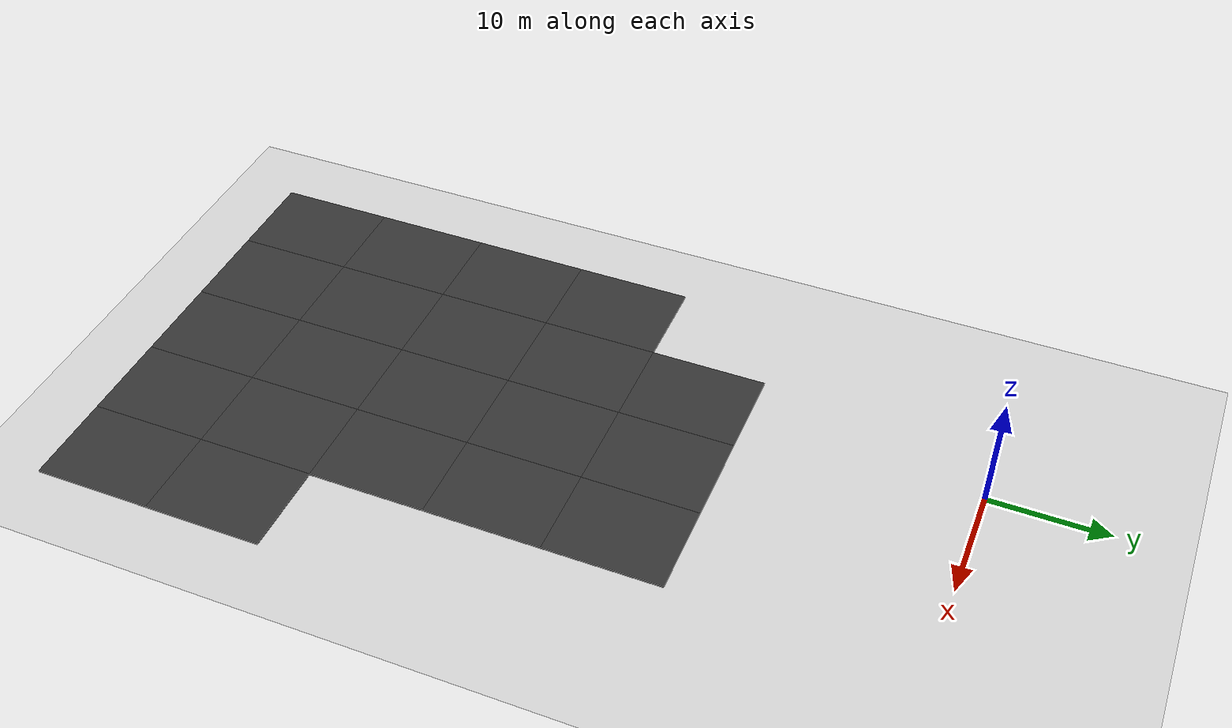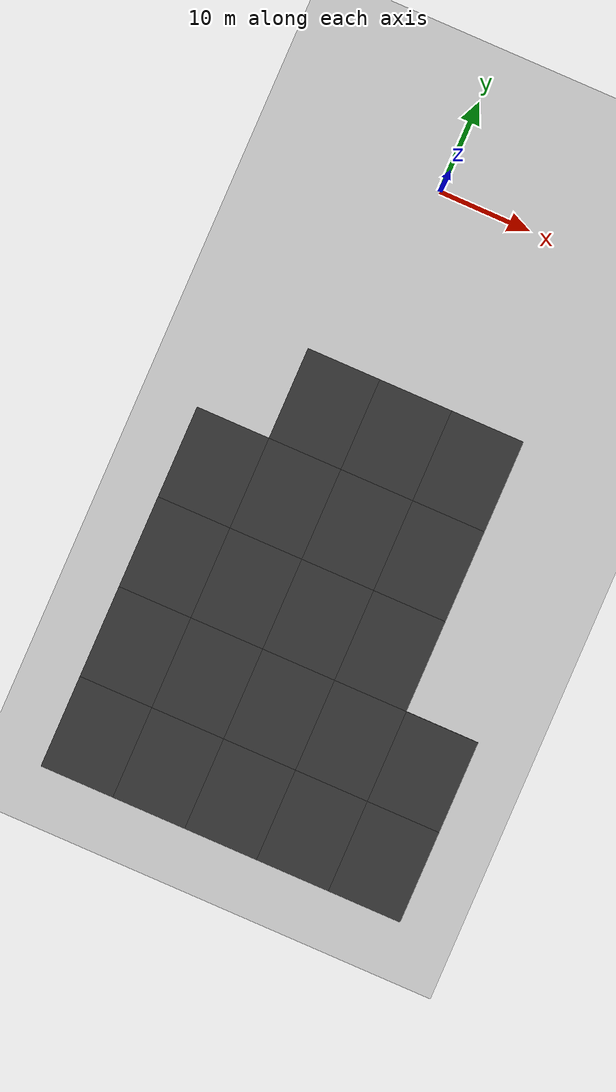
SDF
<sdf version="1.7">
 <world name="default">
  <model name="ground_plane">
   <static>1</static>
   <link name="link">
    <collision name="collision">
     <geometry><plane><normal>0 0 1</normal><size>100 100</size></plane></geometry>
     <surface>
      <contact><collide_bitmask>65535</collide_bitmask></contact>
      <friction><ode><mu>100</mu><mu2>50</mu2></ode></friction>
     </surface>
    </collision>
    <visual name="visual">
     <cast_shadows>0</cast_shadows>
     <geometry><plane><normal>0 0 1</normal><size>100 100</size></plane></geometry>
     <material>
      <script><uri>file://media/materials/scripts/gazebo.material</uri><name>Gazebo/Grey</name></script>
     </material>
    </visual>
   </link>
  </model>
  <model name="mud_box_19">
   <link name="link">
    <inertial>
     <mass>1</mass>
     <inertia><ixx>1</ixx><ixy>0</ixy><ixz>0</ixz><iyy>1</iyy><iyz>0</iyz><izz>1</izz></inertia>
    </inertial>
    <visual name="visual">
     <cast_shadows>0</cast_shadows>
     <geometry><box><size>8 10 0.2</size></box></geometry>
     <material>
      <script>
       <uri>model://mud_box/materials/scripts</uri>
       <uri>model://mud_box/materials/textures</uri>
       <name>vrc/mud</name>
      </script>
      <shader type="pixel"><normal_map>__default__</normal_map></shader>
      <ambient>0.2 0.2 0.2 1</ambient>
      <diffuse>0.2 0.2 0.2 1</diffuse>
      <specular>0.2 0.2 0.2 1</specular>
      <emissive>0 0 0 1</emissive>
     </material>
    </visual>
    <collision name="collision">
     <geometry><box><size>8 10 0.2</size></box></geometry>
     <surface>
      <friction>
       <ode><mu>1</mu><mu2>1</mu2><fdir1>0 0 0</fdir1><slip1>0</slip1><slip2>0</slip2></ode>
       <torsional>
        <coefficient>1</coefficient>
        <patch_radius>0</patch_radius>
        <surface_radius>0</surface_radius>
        <use_patch_radius>1</use_patch_radius>
        <ode><slip>0</slip></ode>
       </torsional>
      </friction>
      <bounce><restitution_coefficient>0</restitution_coefficient><threshold>1e+06</threshold></bounce>
      <contact>
       <collide_without_contact>0</collide_without_contact>
       <collide_without_contact_bitmask>1</collide_without_contact_bitmask>
       <collide_bitmask>1</collide_bitmask>
       <ode>
        <soft_cfm>0</soft_cfm>
        <soft_erp>0.2</soft_erp>
        <kp>1e+13</kp>
        <kd>1</kd>
        <max_vel>0.01</max_vel>
        <min_depth>0</min_depth>
       </ode>
       <bullet>
        <split_impulse>1</split_impulse>
        <split_impulse_penetration_threshold>-0.01</split_impulse_penetration_threshold>
        <soft_cfm>0</soft_cfm>
        <soft_erp>0.2</soft_erp>
        <kp>1e+13</kp>
        <kd>1</kd>
       </bullet>
      </contact>
     </surface>
    </collision>
   </link>
   <static>1</static>
   <pose>14 -45 0 0 -0 0</pose>
  </model>
  <model name="mud_box_20">
   <link name="link">
    <inertial>
     <mass>1</mass>
     <inertia><ixx>1</ixx><ixy>0</ixy><ixz>0</ixz><iyy>1</iyy><iyz>0</iyz><izz>1</izz></inertia>
    </inertial>
    <visual name="visual">
     <cast_shadows>0</cast_shadows>
     <geometry><box><size>8 10 0.2</size></box></geometry>
     <material>
      <script>
       <uri>model://mud_box/materials/scripts</uri>
       <uri>model://mud_box/materials/textures</uri>
       <name>vrc/mud</name>
      </script>
      <shader type="pixel"><normal_map>__default__</normal_map></shader>
      <ambient>0.2 0.2 0.2 1</ambient>
      <diffuse>0.2 0.2 0.2 1</diffuse>
      <specular>0.2 0.2 0.2 1</specular>
      <emissive>0 0 0 1</emissive>
     </material>
    </visual>
    <collision name="collision">
     <geometry><box><size>8 10 0.2</size></box></geometry>
     <surface>
      <friction>
       <ode><mu>1</mu><mu2>1</mu2><fdir1>0 0 0</fdir1><slip1>0</slip1><slip2>0</slip2></ode>
       <torsional>
        <coefficient>1</coefficient>
        <patch_radius>0</patch_radius>
        <surface_radius>0</surface_radius>
        <use_patch_radius>1</use_patch_radius>
        <ode><slip>0</slip></ode>
       </torsional>
      </friction>
      <bounce><restitution_coefficient>0</restitution_coefficient><threshold>1e+06</threshold></bounce>
      <contact>
       <collide_without_contact>0</collide_without_contact>
       <collide_without_contact_bitmask>1</collide_without_contact_bitmask>
       <collide_bitmask>1</collide_bitmask>
       <ode>
        <soft_cfm>0</soft_cfm>
        <soft_erp>0.2</soft_erp>
        <kp>1e+13</kp>
        <kd>1</kd>
        <max_vel>0.01</max_vel>
        <min_depth>0</min_depth>
       </ode>
       <bullet>
        <split_impulse>1</split_impulse>
        <split_impulse_penetration_threshold>-0.01</split_impulse_penetration_threshold>
        <soft_cfm>0</soft_cfm>
        <soft_erp>0.2</soft_erp>
        <kp>1e+13</kp>
        <kd>1</kd>
       </bullet>
      </contact>
     </surface>
    </collision>
   </link>
   <static>1</static>
   <pose>14 -35 0 0 -0 0</pose>
  </model>
  <model name="mud_box_21">
   <link name="link">
    <inertial>
     <mass>1</mass>
     <inertia><ixx>1</ixx><ixy>0</ixy><ixz>0</ixz><iyy>1</iyy><iyz>0</iyz><izz>1</izz></inertia>
    </inertial>
    <visual name="visual">
     <cast_shadows>0</cast_shadows>
     <geometry><box><size>8 10 0.2</size></box></geometry>
     <material>
      <script>
       <uri>model://mud_box/materials/scripts</uri>
       <uri>model://mud_box/materials/textures</uri>
       <name>vrc/mud</name>
      </script>
      <shader type="pixel"><normal_map>__default__</normal_map></shader>
      <ambient>0.2 0.2 0.2 1</ambient>
      <diffuse>0.2 0.2 0.2 1</diffuse>
      <specular>0.2 0.2 0.2 1</specular>
      <emissive>0 0 0 1</emissive>
     </material>
    </visual>
    <collision name="collision">
     <geometry><box><size>8 10 0.2</size></box></geometry>
     <surface>
      <friction>
       <ode><mu>1</mu><mu2>1</mu2><fdir1>0 0 0</fdir1><slip1>0</slip1><slip2>0</slip2></ode>
       <torsional>
        <coefficient>1</coefficient>
        <patch_radius>0</patch_radius>
        <surface_radius>0</surface_radius>
        <use_patch_radius>1</use_patch_radius>
        <ode><slip>0</slip></ode>
       </torsional>
      </friction>
      <bounce><restitution_coefficient>0</restitution_coefficient><threshold>1e+06</threshold></bounce>
      <contact>
       <collide_without_contact>0</collide_without_contact>
       <collide_without_contact_bitmask>1</collide_without_contact_bitmask>
       <collide_bitmask>1</collide_bitmask>
       <ode>
        <soft_cfm>0</soft_cfm>
        <soft_erp>0.2</soft_erp>
        <kp>1e+13</kp>
        <kd>1</kd>
        <max_vel>0.01</max_vel>
        <min_depth>0</min_depth>
       </ode>
       <bullet>
        <split_impulse>1</split_impulse>
        <split_impulse_penetration_threshold>-0.01</split_impulse_penetration_threshold>
        <soft_cfm>0</soft_cfm>
        <soft_erp>0.2</soft_erp>
        <kp>1e+13</kp>
        <kd>1</kd>
       </bullet>
      </contact>
     </surface>
    </collision>
   </link>
   <static>1</static>
   <pose>14 -25 0 0 -0 0</pose>
  </model>
  <model name="mud_box_26">
   <link name="link">
    <inertial>
     <mass>1</mass>
     <inertia><ixx>1</ixx><ixy>0</ixy><ixz>0</ixz><iyy>1</iyy><iyz>0</iyz><izz>1</izz></inertia>
    </inertial>
    <visual name="visual">
     <cast_shadows>0</cast_shadows>
     <geometry><box><size>8 10 0.2</size></box></geometry>
     <material>
      <script>
       <uri>model://mud_box/materials/scripts</uri>
       <uri>model://mud_box/materials/textures</uri>
       <name>vrc/mud</name>
      </script>
      <shader type="pixel"><normal_map>__default__</normal_map></shader>
      <ambient>0.2 0.2 0.2 1</ambient>
      <diffuse>0.2 0.2 0.2 1</diffuse>
      <specular>0.2 0.2 0.2 1</specular>
      <emissive>0 0 0 1</emissive>
     </material>
    </visual>
    <collision name="collision">
     <geometry><box><size>8 10 0.2</size></box></geometry>
     <surface>
      <friction>
       <ode><mu>1</mu><mu2>1</mu2><fdir1>0 0 0</fdir1><slip1>0</slip1><slip2>0</slip2></ode>
       <torsional>
        <coefficient>1</coefficient>
        <patch_radius>0</patch_radius>
        <surface_radius>0</surface_radius>
        <use_patch_radius>1</use_patch_radius>
        <ode><slip>0</slip></ode>
       </torsional>
      </friction>
      <bounce><restitution_coefficient>0</restitution_coefficient><threshold>1e+06</threshold></bounce>
      <contact>
       <collide_without_contact>0</collide_without_contact>
       <collide_without_contact_bitmask>1</collide_without_contact_bitmask>
       <collide_bitmask>1</collide_bitmask>
       <ode>
        <soft_cfm>0</soft_cfm>
        <soft_erp>0.2</soft_erp>
        <kp>1e+13</kp>
        <kd>1</kd>
        <max_vel>0.01</max_vel>
        <min_depth>0</min_depth>
       </ode>
       <bullet>
        <split_impulse>1</split_impulse>
        <split_impulse_penetration_threshold>-0.01</split_impulse_penetration_threshold>
        <soft_cfm>0</soft_cfm>
        <soft_erp>0.2</soft_erp>
        <kp>1e+13</kp>
        <kd>1</kd>
       </bullet>
      </contact>
     </surface>
    </collision>
   </link>
   <static>1</static>
   <pose>6 -25 0 0 -0 0</pose>
  </model>
  <model name="mud_box_27">
   <link name="link">
    <inertial>
     <mass>1</mass>
     <inertia><ixx>1</ixx><ixy>0</ixy><ixz>0</ixz><iyy>1</iyy><iyz>0</iyz><izz>1</izz></inertia>
    </inertial>
    <visual name="visual">
     <cast_shadows>0</cast_shadows>
     <geometry><box><size>8 10 0.2</size></box></geometry>
     <material>
      <script>
       <uri>model://mud_box/materials/scripts</uri>
       <uri>model://mud_box/materials/textures</uri>
       <name>vrc/mud</name>
      </script>
      <shader type="pixel"><normal_map>__default__</normal_map></shader>
      <ambient>0.2 0.2 0.2 1</ambient>
      <diffuse>0.2 0.2 0.2 1</diffuse>
      <specular>0.2 0.2 0.2 1</specular>
      <emissive>0 0 0 1</emissive>
     </material>
    </visual>
    <collision name="collision">
     <geometry><box><size>8 10 0.2</size></box></geometry>
     <surface>
      <friction>
       <ode><mu>1</mu><mu2>1</mu2><fdir1>0 0 0</fdir1><slip1>0</slip1><slip2>0</slip2></ode>
       <torsional>
        <coefficient>1</coefficient>
        <patch_radius>0</patch_radius>
        <surface_radius>0</surface_radius>
        <use_patch_radius>1</use_patch_radius>
        <ode><slip>0</slip></ode>
       </torsional>
      </friction>
      <bounce><restitution_coefficient>0</restitution_coefficient><threshold>1e+06</threshold></bounce>
      <contact>
       <collide_without_contact>0</collide_without_contact>
       <collide_without_contact_bitmask>1</collide_without_contact_bitmask>
       <collide_bitmask>1</collide_bitmask>
       <ode>
        <soft_cfm>0</soft_cfm>
        <soft_erp>0.2</soft_erp>
        <kp>1e+13</kp>
        <kd>1</kd>
        <max_vel>0.01</max_vel>
        <min_depth>0</min_depth>
       </ode>
       <bullet>
        <split_impulse>1</split_impulse>
        <split_impulse_penetration_threshold>-0.01</split_impulse_penetration_threshold>
        <soft_cfm>0</soft_cfm>
        <soft_erp>0.2</soft_erp>
        <kp>1e+13</kp>
        <kd>1</kd>
       </bullet>
      </contact>
     </surface>
    </collision>
   </link>
   <static>1</static>
   <pose>6 -35 0 0 -0 0</pose>
  </model>
  <model name="mud_box_28">
   <link name="link">
    <inertial>
     <mass>1</mass>
     <inertia><ixx>1</ixx><ixy>0</ixy><ixz>0</ixz><iyy>1</iyy><iyz>0</iyz><izz>1</izz></inertia>
    </inertial>
    <visual name="visual">
     <cast_shadows>0</cast_shadows>
     <geometry><box><size>8 10 0.2</size></box></geometry>
     <material>
      <script>
       <uri>model://mud_box/materials/scripts</uri>
       <uri>model://mud_box/materials/textures</uri>
       <name>vrc/mud</name>
      </script>
      <shader type="pixel"><normal_map>__default__</normal_map></shader>
      <ambient>0.2 0.2 0.2 1</ambient>
      <diffuse>0.2 0.2 0.2 1</diffuse>
      <specular>0.2 0.2 0.2 1</specular>
      <emissive>0 0 0 1</emissive>
     </material>
    </visual>
    <collision name="collision">
     <geometry><box><size>8 10 0.2</size></box></geometry>
     <surface>
      <friction>
       <ode><mu>1</mu><mu2>1</mu2><fdir1>0 0 0</fdir1><slip1>0</slip1><slip2>0</slip2></ode>
       <torsional>
        <coefficient>1</coefficient>
        <patch_radius>0</patch_radius>
        <surface_radius>0</surface_radius>
        <use_patch_radius>1</use_patch_radius>
        <ode><slip>0</slip></ode>
       </torsional>
      </friction>
      <bounce><restitution_coefficient>0</restitution_coefficient><threshold>1e+06</threshold></bounce>
      <contact>
       <collide_without_contact>0</collide_without_contact>
       <collide_without_contact_bitmask>1</collide_without_contact_bitmask>
       <collide_bitmask>1</collide_bitmask>
       <ode>
        <soft_cfm>0</soft_cfm>
        <soft_erp>0.2</soft_erp>
        <kp>1e+13</kp>
        <kd>1</kd>
        <max_vel>0.01</max_vel>
        <min_depth>0</min_depth>
       </ode>
       <bullet>
        <split_impulse>1</split_impulse>
        <split_impulse_penetration_threshold>-0.01</split_impulse_penetration_threshold>
        <soft_cfm>0</soft_cfm>
        <soft_erp>0.2</soft_erp>
        <kp>1e+13</kp>
        <kd>1</kd>
       </bullet>
      </contact>
     </surface>
    </collision>
   </link>
   <static>1</static>
   <pose>6 -45 0 0 -0 0</pose>
  </model>
  <model name="mud_box_29">
   <link name="link">
    <inertial>
     <mass>1</mass>
     <inertia><ixx>1</ixx><ixy>0</ixy><ixz>0</ixz><iyy>1</iyy><iyz>0</iyz><izz>1</izz></inertia>
    </inertial>
    <visual name="visual">
     <cast_shadows>0</cast_shadows>
     <geometry><box><size>8 10 0.2</size></box></geometry>
     <material>
      <script>
       <uri>model://mud_box/materials/scripts</uri>
       <uri>model://mud_box/materials/textures</uri>
       <name>vrc/mud</name>
      </script>
      <shader type="pixel"><normal_map>__default__</normal_map></shader>
      <ambient>0.2 0.2 0.2 1</ambient>
      <diffuse>0.2 0.2 0.2 1</diffuse>
      <specular>0.2 0.2 0.2 1</specular>
      <emissive>0 0 0 1</emissive>
     </material>
    </visual>
    <collision name="collision">
     <geometry><box><size>8 10 0.2</size></box></geometry>
     <surface>
      <friction>
       <ode><mu>1</mu><mu2>1</mu2><fdir1>0 0 0</fdir1><slip1>0</slip1><slip2>0</slip2></ode>
       <torsional>
        <coefficient>1</coefficient>
        <patch_radius>0</patch_radius>
        <surface_radius>0</surface_radius>
        <use_patch_radius>1</use_patch_radius>
        <ode><slip>0</slip></ode>
       </torsional>
      </friction>
      <bounce><restitution_coefficient>0</restitution_coefficient><threshold>1e+06</threshold></bounce>
      <contact>
       <collide_without_contact>0</collide_without_contact>
       <collide_without_contact_bitmask>1</collide_without_contact_bitmask>
       <collide_bitmask>1</collide_bitmask>
       <ode>
        <soft_cfm>0</soft_cfm>
        <soft_erp>0.2</soft_erp>
        <kp>1e+13</kp>
        <kd>1</kd>
        <max_vel>0.01</max_vel>
        <min_depth>0</min_depth>
       </ode>
       <bullet>
        <split_impulse>1</split_impulse>
        <split_impulse_penetration_threshold>-0.01</split_impulse_penetration_threshold>
        <soft_cfm>0</soft_cfm>
        <soft_erp>0.2</soft_erp>
        <kp>1e+13</kp>
        <kd>1</kd>
       </bullet>
      </contact>
     </surface>
    </collision>
   </link>
   <static>1</static>
   <pose>-2 -45 0 0 -0 0</pose>
  </model>
  <model name="mud_box_30">
   <link name="link">
    <inertial>
     <mass>1</mass>
     <inertia><ixx>1</ixx><ixy>0</ixy><ixz>0</ixz><iyy>1</iyy><iyz>0</iyz><izz>1</izz></inertia>
    </inertial>
    <visual name="visual">
     <cast_shadows>0</cast_shadows>
     <geometry><box><size>8 10 0.2</size></box></geometry>
     <material>
      <script>
       <uri>model://mud_box/materials/scripts</uri>
       <uri>model://mud_box/materials/textures</uri>
       <name>vrc/mud</name>
      </script>
      <shader type="pixel"><normal_map>__default__</normal_map></shader>
      <ambient>0.2 0.2 0.2 1</ambient>
      <diffuse>0.2 0.2 0.2 1</diffuse>
      <specular>0.2 0.2 0.2 1</specular>
      <emissive>0 0 0 1</emissive>
     </material>
    </visual>
    <collision name="collision">
     <geometry><box><size>8 10 0.2</size></box></geometry>
     <surface>
      <friction>
       <ode><mu>1</mu><mu2>1</mu2><fdir1>0 0 0</fdir1><slip1>0</slip1><slip2>0</slip2></ode>
       <torsional>
        <coefficient>1</coefficient>
        <patch_radius>0</patch_radius>
        <surface_radius>0</surface_radius>
        <use_patch_radius>1</use_patch_radius>
        <ode><slip>0</slip></ode>
       </torsional>
      </friction>
      <bounce><restitution_coefficient>0</restitution_coefficient><threshold>1e+06</threshold></bounce>
      <contact>
       <collide_without_contact>0</collide_without_contact>
       <collide_without_contact_bitmask>1</collide_without_contact_bitmask>
       <collide_bitmask>1</collide_bitmask>
       <ode>
        <soft_cfm>0</soft_cfm>
        <soft_erp>0.2</soft_erp>
        <kp>1e+13</kp>
        <kd>1</kd>
        <max_vel>0.01</max_vel>
        <min_depth>0</min_depth>
       </ode>
       <bullet>
        <split_impulse>1</split_impulse>
        <split_impulse_penetration_threshold>-0.01</split_impulse_penetration_threshold>
        <soft_cfm>0</soft_cfm>
        <soft_erp>0.2</soft_erp>
        <kp>1e+13</kp>
        <kd>1</kd>
       </bullet>
      </contact>
     </surface>
    </collision>
   </link>
   <static>1</static>
   <pose>-2 -35 0 0 -0 0</pose>
  </model>
  <model name="mud_box_31">
   <link name="link">
    <inertial>
     <mass>1</mass>
     <inertia><ixx>1</ixx><ixy>0</ixy><ixz>0</ixz><iyy>1</iyy><iyz>0</iyz><izz>1</izz></inertia>
    </inertial>
    <visual name="visual">
     <cast_shadows>0</cast_shadows>
     <geometry><box><size>8 10 0.2</size></box></geometry>
     <material>
      <script>
       <uri>model://mud_box/materials/scripts</uri>
       <uri>model://mud_box/materials/textures</uri>
       <name>vrc/mud</name>
      </script>
      <shader type="pixel"><normal_map>__default__</normal_map></shader>
      <ambient>0.2 0.2 0.2 1</ambient>
      <diffuse>0.2 0.2 0.2 1</diffuse>
      <specular>0.2 0.2 0.2 1</specular>
      <emissive>0 0 0 1</emissive>
     </material>
    </visual>
    <collision name="collision">
     <geometry><box><size>8 10 0.2</size></box></geometry>
     <surface>
      <friction>
       <ode><mu>1</mu><mu2>1</mu2><fdir1>0 0 0</fdir1><slip1>0</slip1><slip2>0</slip2></ode>
       <torsional>
        <coefficient>1</coefficient>
        <patch_radius>0</patch_radius>
        <surface_radius>0</surface_radius>
        <use_patch_radius>1</use_patch_radius>
        <ode><slip>0</slip></ode>
       </torsional>
      </friction>
      <bounce><restitution_coefficient>0</restitution_coefficient><threshold>1e+06</threshold></bounce>
      <contact>
       <collide_without_contact>0</collide_without_contact>
       <collide_without_contact_bitmask>1</collide_without_contact_bitmask>
       <collide_bitmask>1</collide_bitmask>
       <ode>
        <soft_cfm>0</soft_cfm>
        <soft_erp>0.2</soft_erp>
        <kp>1e+13</kp>
        <kd>1</kd>
        <max_vel>0.01</max_vel>
        <min_depth>0</min_depth>
       </ode>
       <bullet>
        <split_impulse>1</split_impulse>
        <split_impulse_penetration_threshold>-0.01</split_impulse_penetration_threshold>
        <soft_cfm>0</soft_cfm>
        <soft_erp>0.2</soft_erp>
        <kp>1e+13</kp>
        <kd>1</kd>
       </bullet>
      </contact>
     </surface>
    </collision>
   </link>
   <static>1</static>
   <pose>-2 -25 0 0 -0 0</pose>
  </model>
  <model name="mud_box_37">
   <link name="link">
    <inertial>
     <mass>1</mass>
     <inertia><ixx>1</ixx><ixy>0</ixy><ixz>0</ixz><iyy>1</iyy><iyz>0</iyz><izz>1</izz></inertia>
    </inertial>
    <visual name="visual">
     <cast_shadows>0</cast_shadows>
     <geometry><box><size>8 10 0.2</size></box></geometry>
     <material>
      <script>
       <uri>model://mud_box/materials/scripts</uri>
       <uri>model://mud_box/materials/textures</uri>
       <name>vrc/mud</name>
      </script>
      <shader type="pixel"><normal_map>__default__</normal_map></shader>
      <ambient>0.2 0.2 0.2 1</ambient>
      <diffuse>0.2 0.2 0.2 1</diffuse>
      <specular>0.2 0.2 0.2 1</specular>
      <emissive>0 0 0 1</emissive>
     </material>
    </visual>
    <collision name="collision">
     <geometry><box><size>8 10 0.2</size></box></geometry>
     <surface>
      <friction>
       <ode><mu>1</mu><mu2>1</mu2><fdir1>0 0 0</fdir1><slip1>0</slip1><slip2>0</slip2></ode>
       <torsional>
        <coefficient>1</coefficient>
        <patch_radius>0</patch_radius>
        <surface_radius>0</surface_radius>
        <use_patch_radius>1</use_patch_radius>
        <ode><slip>0</slip></ode>
       </torsional>
      </friction>
      <bounce><restitution_coefficient>0</restitution_coefficient><threshold>1e+06</threshold></bounce>
      <contact>
       <collide_without_contact>0</collide_without_contact>
       <collide_without_contact_bitmask>1</collide_without_contact_bitmask>
       <collide_bitmask>1</collide_bitmask>
       <ode>
        <soft_cfm>0</soft_cfm>
        <soft_erp>0.2</soft_erp>
        <kp>1e+13</kp>
        <kd>1</kd>
        <max_vel>0.01</max_vel>
        <min_depth>0</min_depth>
       </ode>
       <bullet>
        <split_impulse>1</split_impulse>
        <split_impulse_penetration_threshold>-0.01</split_impulse_penetration_threshold>
        <soft_cfm>0</soft_cfm>
        <soft_erp>0.2</soft_erp>
        <kp>1e+13</kp>
        <kd>1</kd>
       </bullet>
      </contact>
     </surface>
    </collision>
   </link>
   <static>1</static>
   <pose>-10 -35 0 0 -0 0</pose>
  </model>
  <model name="mud_box_38">
   <link name="link">
    <inertial>
     <mass>1</mass>
     <inertia><ixx>1</ixx><ixy>0</ixy><ixz>0</ixz><iyy>1</iyy><iyz>0</iyz><izz>1</izz></inertia>
    </inertial>
    <visual name="visual">
     <cast_shadows>0</cast_shadows>
     <geometry><box><size>8 10 0.2</size></box></geometry>
     <material>
      <script>
       <uri>model://mud_box/materials/scripts</uri>
       <uri>model://mud_box/materials/textures</uri>
       <name>vrc/mud</name>
      </script>
      <shader type="pixel"><normal_map>__default__</normal_map></shader>
      <ambient>0.2 0.2 0.2 1</ambient>
      <diffuse>0.2 0.2 0.2 1</diffuse>
      <specular>0.2 0.2 0.2 1</specular>
      <emissive>0 0 0 1</emissive>
     </material>
    </visual>
    <collision name="collision">
     <geometry><box><size>8 10 0.2</size></box></geometry>
     <surface>
      <friction>
       <ode><mu>1</mu><mu2>1</mu2><fdir1>0 0 0</fdir1><slip1>0</slip1><slip2>0</slip2></ode>
       <torsional>
        <coefficient>1</coefficient>
        <patch_radius>0</patch_radius>
        <surface_radius>0</surface_radius>
        <use_patch_radius>1</use_patch_radius>
        <ode><slip>0</slip></ode>
       </torsional>
      </friction>
      <bounce><restitution_coefficient>0</restitution_coefficient><threshold>1e+06</threshold></bounce>
      <contact>
       <collide_without_contact>0</collide_without_contact>
       <collide_without_contact_bitmask>1</collide_without_contact_bitmask>
       <collide_bitmask>1</collide_bitmask>
       <ode>
        <soft_cfm>0</soft_cfm>
        <soft_erp>0.2</soft_erp>
        <kp>1e+13</kp>
        <kd>1</kd>
        <max_vel>0.01</max_vel>
        <min_depth>0</min_depth>
       </ode>
       <bullet>
        <split_impulse>1</split_impulse>
        <split_impulse_penetration_threshold>-0.01</split_impulse_penetration_threshold>
        <soft_cfm>0</soft_cfm>
        <soft_erp>0.2</soft_erp>
        <kp>1e+13</kp>
        <kd>1</kd>
       </bullet>
      </contact>
     </surface>
    </collision>
   </link>
   <static>1</static>
   <pose>-10 -45 0 0 -0 0</pose>
  </model>
  <model name="mud_box_67">
   <link name="link">
    <inertial>
     <mass>1</mass>
     <inertia><ixx>1</ixx><ixy>0</ixy><ixz>0</ixz><iyy>1</iyy><iyz>0</iyz><izz>1</izz></inertia>
    </inertial>
    <visual name="visual">
     <cast_shadows>0</cast_shadows>
     <geometry><box><size>8 10 0.2</size></box></geometry>
     <material>
      <script>
       <uri>model://mud_box/materials/scripts</uri>
       <uri>model://mud_box/materials/textures</uri>
       <name>vrc/mud</name>
      </script>
      <shader type="pixel"><normal_map>__default__</normal_map></shader>
      <ambient>0.2 0.2 0.2 1</ambient>
      <diffuse>0.2 0.2 0.2 1</diffuse>
      <specular>0.2 0.2 0.2 1</specular>
      <emissive>0 0 0 1</emissive>
     </material>
    </visual>
    <collision name="collision">
     <geometry><box><size>8 10 0.2</size></box></geometry>
     <surface>
      <friction>
       <ode><mu>1</mu><mu2>1</mu2><fdir1>0 0 0</fdir1><slip1>0</slip1><slip2>0</slip2></ode>
       <torsional>
        <coefficient>1</coefficient>
        <patch_radius>0</patch_radius>
        <surface_radius>0</surface_radius>
        <use_patch_radius>1</use_patch_radius>
        <ode><slip>0</slip></ode>
       </torsional>
      </friction>
      <bounce><restitution_coefficient>0</restitution_coefficient><threshold>1e+06</threshold></bounce>
      <contact>
       <collide_without_contact>0</collide_without_contact>
       <collide_without_contact_bitmask>1</collide_without_contact_bitmask>
       <collide_bitmask>1</collide_bitmask>
       <ode>
        <soft_cfm>0</soft_cfm>
        <soft_erp>0.2</soft_erp>
        <kp>1e+13</kp>
        <kd>1</kd>
        <max_vel>0.01</max_vel>
        <min_depth>0</min_depth>
       </ode>
       <bullet>
        <split_impulse>1</split_impulse>
        <split_impulse_penetration_threshold>-0.01</split_impulse_penetration_threshold>
        <soft_cfm>0</soft_cfm>
        <soft_erp>0.2</soft_erp>
        <kp>1e+13</kp>
        <kd>1</kd>
       </bullet>
      </contact>
     </surface>
    </collision>
   </link>
   <static>1</static>
   <pose>22 -55 0 0 -0 0</pose>
  </model>
  <model name="mud_box_68">
   <link name="link">
    <inertial>
     <mass>1</mass>
     <inertia><ixx>1</ixx><ixy>0</ixy><ixz>0</ixz><iyy>1</iyy><iyz>0</iyz><izz>1</izz></inertia>
    </inertial>
    <visual name="visual">
     <cast_shadows>0</cast_shadows>
     <geometry><box><size>8 10 0.2</size></box></geometry>
     <material>
      <script>
       <uri>model://mud_box/materials/scripts</uri>
       <uri>model://mud_box/materials/textures</uri>
       <name>vrc/mud</name>
      </script>
      <shader type="pixel"><normal_map>__default__</normal_map></shader>
      <ambient>0.2 0.2 0.2 1</ambient>
      <diffuse>0.2 0.2 0.2 1</diffuse>
      <specular>0.2 0.2 0.2 1</specular>
      <emissive>0 0 0 1</emissive>
     </material>
    </visual>
    <collision name="collision">
     <geometry><box><size>8 10 0.2</size></box></geometry>
     <surface>
      <friction>
       <ode><mu>1</mu><mu2>1</mu2><fdir1>0 0 0</fdir1><slip1>0</slip1><slip2>0</slip2></ode>
       <torsional>
        <coefficient>1</coefficient>
        <patch_radius>0</patch_radius>
        <surface_radius>0</surface_radius>
        <use_patch_radius>1</use_patch_radius>
        <ode><slip>0</slip></ode>
       </torsional>
      </friction>
      <bounce><restitution_coefficient>0</restitution_coefficient><threshold>1e+06</threshold></bounce>
      <contact>
       <collide_without_contact>0</collide_without_contact>
       <collide_without_contact_bitmask>1</collide_without_contact_bitmask>
       <collide_bitmask>1</collide_bitmask>
       <ode>
        <soft_cfm>0</soft_cfm>
        <soft_erp>0.2</soft_erp>
        <kp>1e+13</kp>
        <kd>1</kd>
        <max_vel>0.01</max_vel>
        <min_depth>0</min_depth>
       </ode>
       <bullet>
        <split_impulse>1</split_impulse>
        <split_impulse_penetration_threshold>-0.01</split_impulse_penetration_threshold>
        <soft_cfm>0</soft_cfm>
        <soft_erp>0.2</soft_erp>
        <kp>1e+13</kp>
        <kd>1</kd>
       </bullet>
      </contact>
     </surface>
    </collision>
   </link>
   <static>1</static>
   <pose>14 -55 0 0 -0 0</pose>
  </model>
  <model name="mud_box_69">
   <link name="link">
    <inertial>
     <mass>1</mass>
     <inertia><ixx>1</ixx><ixy>0</ixy><ixz>0</ixz><iyy>1</iyy><iyz>0</iyz><izz>1</izz></inertia>
    </inertial>
    <visual name="visual">
     <cast_shadows>0</cast_shadows>
     <geometry><box><size>8 10 0.2</size></box></geometry>
     <material>
      <script>
       <uri>model://mud_box/materials/scripts</uri>
       <uri>model://mud_box/materials/textures</uri>
       <name>vrc/mud</name>
      </script>
      <shader type="pixel"><normal_map>__default__</normal_map></shader>
      <ambient>0.2 0.2 0.2 1</ambient>
      <diffuse>0.2 0.2 0.2 1</diffuse>
      <specular>0.2 0.2 0.2 1</specular>
      <emissive>0 0 0 1</emissive>
     </material>
    </visual>
    <collision name="collision">
     <geometry><box><size>8 10 0.2</size></box></geometry>
     <surface>
      <friction>
       <ode><mu>1</mu><mu2>1</mu2><fdir1>0 0 0</fdir1><slip1>0</slip1><slip2>0</slip2></ode>
       <torsional>
        <coefficient>1</coefficient>
        <patch_radius>0</patch_radius>
        <surface_radius>0</surface_radius>
        <use_patch_radius>1</use_patch_radius>
        <ode><slip>0</slip></ode>
       </torsional>
      </friction>
      <bounce><restitution_coefficient>0</restitution_coefficient><threshold>1e+06</threshold></bounce>
      <contact>
       <collide_without_contact>0</collide_without_contact>
       <collide_without_contact_bitmask>1</collide_without_contact_bitmask>
       <collide_bitmask>1</collide_bitmask>
       <ode>
        <soft_cfm>0</soft_cfm>
        <soft_erp>0.2</soft_erp>
        <kp>1e+13</kp>
        <kd>1</kd>
        <max_vel>0.01</max_vel>
        <min_depth>0</min_depth>
       </ode>
       <bullet>
        <split_impulse>1</split_impulse>
        <split_impulse_penetration_threshold>-0.01</split_impulse_penetration_threshold>
        <soft_cfm>0</soft_cfm>
        <soft_erp>0.2</soft_erp>
        <kp>1e+13</kp>
        <kd>1</kd>
       </bullet>
      </contact>
     </surface>
    </collision>
   </link>
   <static>1</static>
   <pose>6 -55 0 0 -0 0</pose>
  </model>
  <model name="mud_box_71">
   <link name="link">
    <inertial>
     <mass>1</mass>
     <inertia><ixx>1</ixx><ixy>0</ixy><ixz>0</ixz><iyy>1</iyy><iyz>0</iyz><izz>1</izz></inertia>
    </inertial>
    <visual name="visual">
     <cast_shadows>0</cast_shadows>
     <geometry><box><size>8 10 0.2</size></box></geometry>
     <material>
      <script>
       <uri>model://mud_box/materials/scripts</uri>
       <uri>model://mud_box/materials/textures</uri>
       <name>vrc/mud</name>
      </script>
      <shader type="pixel"><normal_map>__default__</normal_map></shader>
      <ambient>0.2 0.2 0.2 1</ambient>
      <diffuse>0.2 0.2 0.2 1</diffuse>
      <specular>0.2 0.2 0.2 1</specular>
      <emissive>0 0 0 1</emissive>
     </material>
    </visual>
    <collision name="collision">
     <geometry><box><size>8 10 0.2</size></box></geometry>
     <surface>
      <friction>
       <ode><mu>1</mu><mu2>1</mu2><fdir1>0 0 0</fdir1><slip1>0</slip1><slip2>0</slip2></ode>
       <torsional>
        <coefficient>1</coefficient>
        <patch_radius>0</patch_radius>
        <surface_radius>0</surface_radius>
        <use_patch_radius>1</use_patch_radius>
        <ode><slip>0</slip></ode>
       </torsional>
      </friction>
      <bounce><restitution_coefficient>0</restitution_coefficient><threshold>1e+06</threshold></bounce>
      <contact>
       <collide_without_contact>0</collide_without_contact>
       <collide_without_contact_bitmask>1</collide_without_contact_bitmask>
       <collide_bitmask>1</collide_bitmask>
       <ode>
        <soft_cfm>0</soft_cfm>
        <soft_erp>0.2</soft_erp>
        <kp>1e+13</kp>
        <kd>1</kd>
        <max_vel>0.01</max_vel>
        <min_depth>0</min_depth>
       </ode>
       <bullet>
        <split_impulse>1</split_impulse>
        <split_impulse_penetration_threshold>-0.01</split_impulse_penetration_threshold>
        <soft_cfm>0</soft_cfm>
        <soft_erp>0.2</soft_erp>
        <kp>1e+13</kp>
        <kd>1</kd>
       </bullet>
      </contact>
     </surface>
    </collision>
   </link>
   <static>1</static>
   <pose>-10 -55 0 0 -0 0</pose>
  </model>
  <model name="mud_box_70">
   <link name="link">
    <inertial>
     <mass>1</mass>
     <inertia><ixx>1</ixx><ixy>0</ixy><ixz>0</ixz><iyy>1</iyy><iyz>0</iyz><izz>1</izz></inertia>
    </inertial>
    <visual name="visual">
     <cast_shadows>0</cast_shadows>
     <geometry><box><size>8 10 0.2</size></box></geometry>
     <material>
      <script>
       <uri>model://mud_box/materials/scripts</uri>
       <uri>model://mud_box/materials/textures</uri>
       <name>vrc/mud</name>
      </script>
      <shader type="pixel"><normal_map>__default__</normal_map></shader>
      <ambient>0.2 0.2 0.2 1</ambient>
      <diffuse>0.2 0.2 0.2 1</diffuse>
      <specular>0.2 0.2 0.2 1</specular>
      <emissive>0 0 0 1</emissive>
     </material>
    </visual>
    <collision name="collision">
     <geometry><box><size>8 10 0.2</size></box></geometry>
     <surface>
      <friction>
       <ode><mu>1</mu><mu2>1</mu2><fdir1>0 0 0</fdir1><slip1>0</slip1><slip2>0</slip2></ode>
       <torsional>
        <coefficient>1</coefficient>
        <patch_radius>0</patch_radius>
        <surface_radius>0</surface_radius>
        <use_patch_radius>1</use_patch_radius>
        <ode><slip>0</slip></ode>
       </torsional>
      </friction>
      <bounce><restitution_coefficient>0</restitution_coefficient><threshold>1e+06</threshold></bounce>
      <contact>
       <collide_without_contact>0</collide_without_contact>
       <collide_without_contact_bitmask>1</collide_without_contact_bitmask>
       <collide_bitmask>1</collide_bitmask>
       <ode>
        <soft_cfm>0</soft_cfm>
        <soft_erp>0.2</soft_erp>
        <kp>1e+13</kp>
        <kd>1</kd>
        <max_vel>0.01</max_vel>
        <min_depth>0</min_depth>
       </ode>
       <bullet>
        <split_impulse>1</split_impulse>
        <split_impulse_penetration_threshold>-0.01</split_impulse_penetration_threshold>
        <soft_cfm>0</soft_cfm>
        <soft_erp>0.2</soft_erp>
        <kp>1e+13</kp>
        <kd>1</kd>
       </bullet>
      </contact>
     </surface>
    </collision>
   </link>
   <static>1</static>
   <pose>-2 -55 0 0 -0 0</pose>
  </model>
  <model name="mud_box_116">
   <link name="link">
    <inertial>
     <mass>1</mass>
     <inertia><ixx>1</ixx><ixy>0</ixy><ixz>0</ixz><iyy>1</iyy><iyz>0</iyz><izz>1</izz></inertia>
    </inertial>
    <visual name="visual">
     <cast_shadows>0</cast_shadows>
     <geometry><box><size>8 10 0.2</size></box></geometry>
     <material>
      <script>
       <uri>model://mud_box/materials/scripts</uri>
       <uri>model://mud_box/materials/textures</uri>
       <name>vrc/mud</name>
      </script>
      <shader type="pixel"><normal_map>__default__</normal_map></shader>
      <ambient>0.2 0.2 0.2 1</ambient>
      <diffuse>0.2 0.2 0.2 1</diffuse>
      <specular>0.2 0.2 0.2 1</specular>
      <emissive>0 0 0 1</emissive>
     </material>
    </visual>
    <collision name="collision">
     <geometry><box><size>8 10 0.2</size></box></geometry>
     <surface>
      <friction>
       <ode><mu>1</mu><mu2>1</mu2><fdir1>0 0 0</fdir1><slip1>0</slip1><slip2>0</slip2></ode>
       <torsional>
        <coefficient>1</coefficient>
        <patch_radius>0</patch_radius>
        <surface_radius>0</surface_radius>
        <use_patch_radius>1</use_patch_radius>
        <ode><slip>0</slip></ode>
       </torsional>
      </friction>
      <bounce><restitution_coefficient>0</restitution_coefficient><threshold>1e+06</threshold></bounce>
      <contact>
       <collide_without_contact>0</collide_without_contact>
       <collide_without_contact_bitmask>1</collide_without_contact_bitmask>
       <collide_bitmask>1</collide_bitmask>
       <ode>
        <soft_cfm>0</soft_cfm>
        <soft_erp>0.2</soft_erp>
        <kp>1e+13</kp>
        <kd>1</kd>
        <max_vel>0.01</max_vel>
        <min_depth>0</min_depth>
       </ode>
       <bullet>
        <split_impulse>1</split_impulse>
        <split_impulse_penetration_threshold>-0.01</split_impulse_penetration_threshold>
        <soft_cfm>0</soft_cfm>
        <soft_erp>0.2</soft_erp>
        <kp>1e+13</kp>
        <kd>1</kd>
       </bullet>
      </contact>
     </surface>
    </collision>
   </link>
   <static>1</static>
   <pose>22 -65 0 0 -0 0</pose>
  </model>
  <model name="mud_box_117">
   <link name="link">
    <inertial>
     <mass>1</mass>
     <inertia><ixx>1</ixx><ixy>0</ixy><ixz>0</ixz><iyy>1</iyy><iyz>0</iyz><izz>1</izz></inertia>
    </inertial>
    <visual name="visual">
     <cast_shadows>0</cast_shadows>
     <geometry><box><size>8 10 0.2</size></box></geometry>
     <material>
      <script>
       <uri>model://mud_box/materials/scripts</uri>
       <uri>model://mud_box/materials/textures</uri>
       <name>vrc/mud</name>
      </script>
      <shader type="pixel"><normal_map>__default__</normal_map></shader>
      <ambient>0.2 0.2 0.2 1</ambient>
      <diffuse>0.2 0.2 0.2 1</diffuse>
      <specular>0.2 0.2 0.2 1</specular>
      <emissive>0 0 0 1</emissive>
     </material>
    </visual>
    <collision name="collision">
     <geometry><box><size>8 10 0.2</size></box></geometry>
     <surface>
      <friction>
       <ode><mu>1</mu><mu2>1</mu2><fdir1>0 0 0</fdir1><slip1>0</slip1><slip2>0</slip2></ode>
       <torsional>
        <coefficient>1</coefficient>
        <patch_radius>0</patch_radius>
        <surface_radius>0</surface_radius>
        <use_patch_radius>1</use_patch_radius>
        <ode><slip>0</slip></ode>
       </torsional>
      </friction>
      <bounce><restitution_coefficient>0</restitution_coefficient><threshold>1e+06</threshold></bounce>
      <contact>
       <collide_without_contact>0</collide_without_contact>
       <collide_without_contact_bitmask>1</collide_without_contact_bitmask>
       <collide_bitmask>1</collide_bitmask>
       <ode>
        <soft_cfm>0</soft_cfm>
        <soft_erp>0.2</soft_erp>
        <kp>1e+13</kp>
        <kd>1</kd>
        <max_vel>0.01</max_vel>
        <min_depth>0</min_depth>
       </ode>
       <bullet>
        <split_impulse>1</split_impulse>
        <split_impulse_penetration_threshold>-0.01</split_impulse_penetration_threshold>
        <soft_cfm>0</soft_cfm>
        <soft_erp>0.2</soft_erp>
        <kp>1e+13</kp>
        <kd>1</kd>
       </bullet>
      </contact>
     </surface>
    </collision>
   </link>
   <static>1</static>
   <pose>14 -65 0 0 -0 0</pose>
  </model>
  <model name="mud_box_118">
   <link name="link">
    <inertial>
     <mass>1</mass>
     <inertia><ixx>1</ixx><ixy>0</ixy><ixz>0</ixz><iyy>1</iyy><iyz>0</iyz><izz>1</izz></inertia>
    </inertial>
    <visual name="visual">
     <cast_shadows>0</cast_shadows>
     <geometry><box><size>8 10 0.2</size></box></geometry>
     <material>
      <script>
       <uri>model://mud_box/materials/scripts</uri>
       <uri>model://mud_box/materials/textures</uri>
       <name>vrc/mud</name>
      </script>
      <shader type="pixel"><normal_map>__default__</normal_map></shader>
      <ambient>0.2 0.2 0.2 1</ambient>
      <diffuse>0.2 0.2 0.2 1</diffuse>
      <specular>0.2 0.2 0.2 1</specular>
      <emissive>0 0 0 1</emissive>
     </material>
    </visual>
    <collision name="collision">
     <geometry><box><size>8 10 0.2</size></box></geometry>
     <surface>
      <friction>
       <ode><mu>1</mu><mu2>1</mu2><fdir1>0 0 0</fdir1><slip1>0</slip1><slip2>0</slip2></ode>
       <torsional>
        <coefficient>1</coefficient>
        <patch_radius>0</patch_radius>
        <surface_radius>0</surface_radius>
        <use_patch_radius>1</use_patch_radius>
        <ode><slip>0</slip></ode>
       </torsional>
      </friction>
      <bounce><restitution_coefficient>0</restitution_coefficient><threshold>1e+06</threshold></bounce>
      <contact>
       <collide_without_contact>0</collide_without_contact>
       <collide_without_contact_bitmask>1</collide_without_contact_bitmask>
       <collide_bitmask>1</collide_bitmask>
       <ode>
        <soft_cfm>0</soft_cfm>
        <soft_erp>0.2</soft_erp>
        <kp>1e+13</kp>
        <kd>1</kd>
        <max_vel>0.01</max_vel>
        <min_depth>0</min_depth>
       </ode>
       <bullet>
        <split_impulse>1</split_impulse>
        <split_impulse_penetration_threshold>-0.01</split_impulse_penetration_threshold>
        <soft_cfm>0</soft_cfm>
        <soft_erp>0.2</soft_erp>
        <kp>1e+13</kp>
        <kd>1</kd>
       </bullet>
      </contact>
     </surface>
    </collision>
   </link>
   <static>1</static>
   <pose>6 -65 0 0 -0 0</pose>
  </model>
  <model name="mud_box_119">
   <link name="link">
    <inertial>
     <mass>1</mass>
     <inertia><ixx>1</ixx><ixy>0</ixy><ixz>0</ixz><iyy>1</iyy><iyz>0</iyz><izz>1</izz></inertia>
    </inertial>
    <visual name="visual">
     <cast_shadows>0</cast_shadows>
     <geometry><box><size>8 10 0.2</size></box></geometry>
     <material>
      <script>
       <uri>model://mud_box/materials/scripts</uri>
       <uri>model://mud_box/materials/textures</uri>
       <name>vrc/mud</name>
      </script>
      <shader type="pixel"><normal_map>__default__</normal_map></shader>
      <ambient>0.2 0.2 0.2 1</ambient>
      <diffuse>0.2 0.2 0.2 1</diffuse>
      <specular>0.2 0.2 0.2 1</specular>
      <emissive>0 0 0 1</emissive>
     </material>
    </visual>
    <collision name="collision">
     <geometry><box><size>8 10 0.2</size></box></geometry>
     <surface>
      <friction>
       <ode><mu>1</mu><mu2>1</mu2><fdir1>0 0 0</fdir1><slip1>0</slip1><slip2>0</slip2></ode>
       <torsional>
        <coefficient>1</coefficient>
        <patch_radius>0</patch_radius>
        <surface_radius>0</surface_radius>
        <use_patch_radius>1</use_patch_radius>
        <ode><slip>0</slip></ode>
       </torsional>
      </friction>
      <bounce><restitution_coefficient>0</restitution_coefficient><threshold>1e+06</threshold></bounce>
      <contact>
       <collide_without_contact>0</collide_without_contact>
       <collide_without_contact_bitmask>1</collide_without_contact_bitmask>
       <collide_bitmask>1</collide_bitmask>
       <ode>
        <soft_cfm>0</soft_cfm>
        <soft_erp>0.2</soft_erp>
        <kp>1e+13</kp>
        <kd>1</kd>
        <max_vel>0.01</max_vel>
        <min_depth>0</min_depth>
       </ode>
       <bullet>
        <split_impulse>1</split_impulse>
        <split_impulse_penetration_threshold>-0.01</split_impulse_penetration_threshold>
        <soft_cfm>0</soft_cfm>
        <soft_erp>0.2</soft_erp>
        <kp>1e+13</kp>
        <kd>1</kd>
       </bullet>
      </contact>
     </surface>
    </collision>
   </link>
   <static>1</static>
   <pose>-2 -65 0 0 -0 0</pose>
  </model>
  <model name="mud_box_120">
   <link name="link">
    <inertial>
     <mass>1</mass>
     <inertia><ixx>1</ixx><ixy>0</ixy><ixz>0</ixz><iyy>1</iyy><iyz>0</iyz><izz>1</izz></inertia>
    </inertial>
    <visual name="visual">
     <cast_shadows>0</cast_shadows>
     <geometry><box><size>8 10 0.2</size></box></geometry>
     <material>
      <script>
       <uri>model://mud_box/materials/scripts</uri>
       <uri>model://mud_box/materials/textures</uri>
       <name>vrc/mud</name>
      </script>
      <shader type="pixel"><normal_map>__default__</normal_map></shader>
      <ambient>0.2 0.2 0.2 1</ambient>
      <diffuse>0.2 0.2 0.2 1</diffuse>
      <specular>0.2 0.2 0.2 1</specular>
      <emissive>0 0 0 1</emissive>
     </material>
    </visual>
    <collision name="collision">
     <geometry><box><size>8 10 0.2</size></box></geometry>
     <surface>
      <friction>
       <ode><mu>1</mu><mu2>1</mu2><fdir1>0 0 0</fdir1><slip1>0</slip1><slip2>0</slip2></ode>
       <torsional>
        <coefficient>1</coefficient>
        <patch_radius>0</patch_radius>
        <surface_radius>0</surface_radius>
        <use_patch_radius>1</use_patch_radius>
        <ode><slip>0</slip></ode>
       </torsional>
      </friction>
      <bounce><restitution_coefficient>0</restitution_coefficient><threshold>1e+06</threshold></bounce>
      <contact>
       <collide_without_contact>0</collide_without_contact>
       <collide_without_contact_bitmask>1</collide_without_contact_bitmask>
       <collide_bitmask>1</collide_bitmask>
       <ode>
        <soft_cfm>0</soft_cfm>
        <soft_erp>0.2</soft_erp>
        <kp>1e+13</kp>
        <kd>1</kd>
        <max_vel>0.01</max_vel>
        <min_depth>0</min_depth>
       </ode>
       <bullet>
        <split_impulse>1</split_impulse>
        <split_impulse_penetration_threshold>-0.01</split_impulse_penetration_threshold>
        <soft_cfm>0</soft_cfm>
        <soft_erp>0.2</soft_erp>
        <kp>1e+13</kp>
        <kd>1</kd>
       </bullet>
      </contact>
     </surface>
    </collision>
   </link>
   <static>1</static>
   <pose>-10 -65 0 0 -0 0</pose>
  </model>
 </world>
</sdf>
